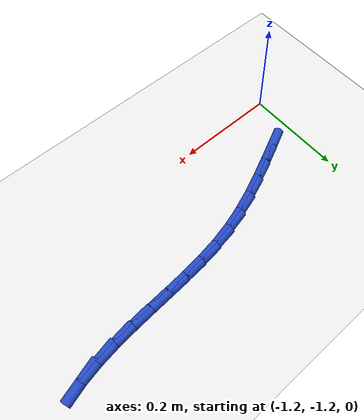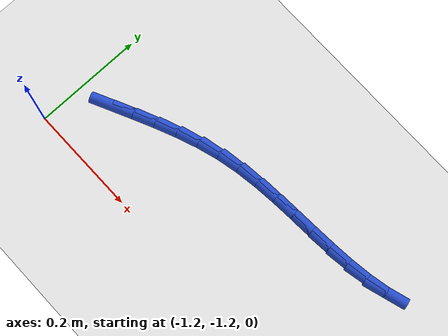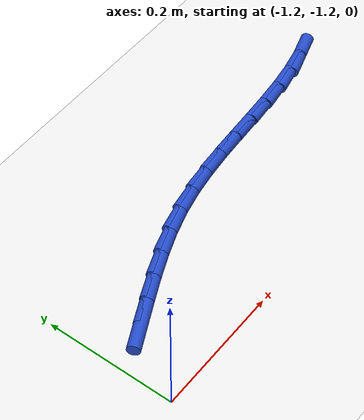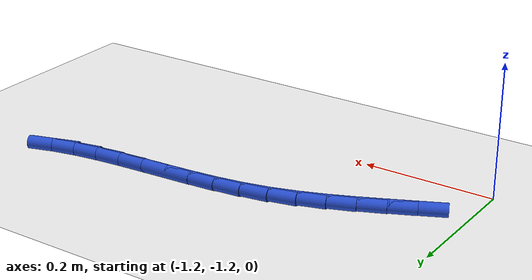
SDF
<sdf version="1.6">
 <world name="default">
  <model name="ground_plane">
   <static>1</static>
   <link name="link">
    <collision name="collision">
     <geometry><plane><normal>0 0 1</normal><size>100 100</size></plane></geometry>
     <surface><friction><ode><mu>100</mu><mu2>50</mu2></ode></friction></surface>
    </collision>
    <visual name="visual">
     <cast_shadows>0</cast_shadows>
     <geometry><plane><normal>0 0 1</normal><size>100 100</size></plane></geometry>
     <material>
      <script><uri>file://media/materials/scripts/gazebo.material</uri><name>Gazebo/WhiteGlow</name></script>
     </material>
    </visual>
   </link>
  </model>
  <model name="line">
   <link name="link_136">
    <pose>-1.1364754962128945 -1.0995438600024492 0.01 0 1.57 0.4483451827545088</pose>
    <collision name="collision">
     <geometry><cylinder><radius>0.01</radius><length>0.08</length></cylinder></geometry>
    </collision>
    <visual name="visual">
     <material>
      <script><name>Gazebo/Blue</name><uri>file://media/materials/scripts/gazebo.material</uri></script>
     </material>
     <geometry><cylinder><radius>0.01</radius><length>0.08</length></cylinder></geometry>
    </visual>
   </link>
   <link name="link_137">
    <pose>-1.0995885017368363 -1.081800635132249 0.01 0 1.57 0.4360663594306818</pose>
    <collision name="collision">
     <geometry><cylinder><radius>0.01</radius><length>0.08</length></cylinder></geometry>
    </collision>
    <visual name="visual">
     <material>
      <script><name>Gazebo/Blue</name><uri>file://media/materials/scripts/gazebo.material</uri></script>
     </material>
     <geometry><cylinder><radius>0.01</radius><length>0.08</length></cylinder></geometry>
    </visual>
   </link>
   <link name="link_138">
    <pose>-1.062421327186949 -1.0644813296248203 0.01 0 1.57 0.4071429713038363</pose>
    <collision name="collision">
     <geometry><cylinder><radius>0.01</radius><length>0.08</length></cylinder></geometry>
    </collision>
    <visual name="visual">
     <material>
      <script><name>Gazebo/Blue</name><uri>file://media/materials/scripts/gazebo.material</uri></script>
     </material>
     <geometry><cylinder><radius>0.01</radius><length>0.08</length></cylinder></geometry>
    </visual>
   </link>
   <link name="link_139">
    <pose>-1.0248357722380752 -1.0482729847320729 0.01 0 1.57 0.36122880415211006</pose>
    <collision name="collision">
     <geometry><cylinder><radius>0.01</radius><length>0.08</length></cylinder></geometry>
    </collision>
    <visual name="visual">
     <material>
      <script><name>Gazebo/Blue</name><uri>file://media/materials/scripts/gazebo.material</uri></script>
     </material>
     <geometry><cylinder><radius>0.01</radius><length>0.08</length></cylinder></geometry>
    </visual>
   </link>
   <link name="link_140">
    <pose>-0.9866936365650579 -1.0338626417059174 0.01 0 1.57 0.29792206052670456</pose>
    <collision name="collision">
     <geometry><cylinder><radius>0.01</radius><length>0.08</length></cylinder></geometry>
    </collision>
    <visual name="visual">
     <material>
      <script><name>Gazebo/Blue</name><uri>file://media/materials/scripts/gazebo.material</uri></script>
     </material>
     <geometry><cylinder><radius>0.01</radius><length>0.08</length></cylinder></geometry>
    </visual>
   </link>
   <link name="link_141">
    <pose>-0.9478567198427407 -1.0219373417982645 0.01 0 1.57 0.2201361042308245</pose>
    <collision name="collision">
     <geometry><cylinder><radius>0.01</radius><length>0.08</length></cylinder></geometry>
    </collision>
    <visual name="visual">
     <material>
      <script><name>Gazebo/Blue</name><uri>file://media/materials/scripts/gazebo.material</uri></script>
     </material>
     <geometry><cylinder><radius>0.01</radius><length>0.08</length></cylinder></geometry>
    </visual>
   </link>
   <link name="link_142">
    <pose>-0.9082193699599022 -1.0130679957924595 0.01 0 1.57 0.1511501015701887</pose>
    <collision name="collision">
     <geometry><cylinder><radius>0.01</radius><length>0.08</length></cylinder></geometry>
    </collision>
    <visual name="visual">
     <material>
      <script><name>Gazebo/Blue</name><uri>file://media/materials/scripts/gazebo.material</uri></script>
     </material>
     <geometry><cylinder><radius>0.01</radius><length>0.08</length></cylinder></geometry>
    </visual>
   </link>
   <link name="link_143">
    <pose>-0.8679266595097579 -1.0069309407338223 0.01 0 1.57 0.10150275135878807</pose>
    <collision name="collision">
     <geometry><cylinder><radius>0.01</radius><length>0.08</length></cylinder></geometry>
    </collision>
    <visual name="visual">
     <material>
      <script><name>Gazebo/Blue</name><uri>file://media/materials/scripts/gazebo.material</uri></script>
     </material>
     <geometry><cylinder><radius>0.01</radius><length>0.08</length></cylinder></geometry>
    </visual>
   </link>
   <link name="link_144">
    <pose>-0.8272401446152706 -1.0027869060120111 0.01 0 1.57 0.07074684781200999</pose>
    <collision name="collision">
     <geometry><cylinder><radius>0.01</radius><length>0.08</length></cylinder></geometry>
    </collision>
    <visual name="visual">
     <material>
      <script><name>Gazebo/Blue</name><uri>file://media/materials/scripts/gazebo.material</uri></script>
     </material>
     <geometry><cylinder><radius>0.01</radius><length>0.08</length></cylinder></geometry>
    </visual>
   </link>
   <link name="link_145">
    <pose>-0.7864220248563539 -0.9998943251931025 0.01 0 1.57 0.05849397891265568</pose>
    <collision name="collision">
     <geometry><cylinder><radius>0.01</radius><length>0.08</length></cylinder></geometry>
    </collision>
    <visual name="visual">
     <material>
      <script><name>Gazebo/Blue</name><uri>file://media/materials/scripts/gazebo.material</uri></script>
     </material>
     <geometry><cylinder><radius>0.01</radius><length>0.08</length></cylinder></geometry>
    </visual>
   </link>
   <link name="link_146">
    <pose>-0.7457344998129212 -0.9975116318431743 0.01 0 1.57 0.06479043383403862</pose>
    <collision name="collision">
     <geometry><cylinder><radius>0.01</radius><length>0.08</length></cylinder></geometry>
    </collision>
    <visual name="visual">
     <material>
      <script><name>Gazebo/Blue</name><uri>file://media/materials/scripts/gazebo.material</uri></script>
     </material>
     <geometry><cylinder><radius>0.01</radius><length>0.08</length></cylinder></geometry>
    </visual>
   </link>
   <link name="link_147">
    <pose>-0.7054397690648858 -0.9948972595283029 0.01 0 1.57 0.09025967765180694</pose>
    <collision name="collision">
     <geometry><cylinder><radius>0.01</radius><length>0.08</length></cylinder></geometry>
    </collision>
    <visual name="visual">
     <material>
      <script><name>Gazebo/Blue</name><uri>file://media/materials/scripts/gazebo.material</uri></script>
     </material>
     <geometry><cylinder><radius>0.01</radius><length>0.08</length></cylinder></geometry>
    </visual>
   </link>
   <link name="link_148">
    <pose>-0.6658000321921604 -0.9913096418145654 0.01 0 1.57 0.13608754102438214</pose>
    <collision name="collision">
     <geometry><cylinder><radius>0.01</radius><length>0.08</length></cylinder></geometry>
    </collision>
    <visual name="visual">
     <material>
      <script><name>Gazebo/Blue</name><uri>file://media/materials/scripts/gazebo.material</uri></script>
     </material>
     <geometry><cylinder><radius>0.01</radius><length>0.08</length></cylinder></geometry>
    </visual>
   </link>
   <link name="link_149">
    <pose>-0.6270774887746603 -0.9860072122680392 0.01 0 1.57 0.20379471282028216</pose>
    <collision name="collision">
     <geometry><cylinder><radius>0.01</radius><length>0.08</length></cylinder></geometry>
    </collision>
    <visual name="visual">
     <material>
      <script><name>Gazebo/Blue</name><uri>file://media/materials/scripts/gazebo.material</uri></script>
     </material>
     <geometry><cylinder><radius>0.01</radius><length>0.08</length></cylinder></geometry>
    </visual>
   </link>
   <link name="link_150">
    <pose>-0.589534338392298 -0.978248404454801 0.01 0 1.57 0.29466292020476464</pose>
    <collision name="collision">
     <geometry><cylinder><radius>0.01</radius><length>0.08</length></cylinder></geometry>
    </collision>
    <visual name="visual">
     <material>
      <script><name>Gazebo/Blue</name><uri>file://media/materials/scripts/gazebo.material</uri></script>
     </material>
     <geometry><cylinder><radius>0.01</radius><length>0.08</length></cylinder></geometry>
    </visual>
   </link>
  </model>
 </world>
</sdf>
